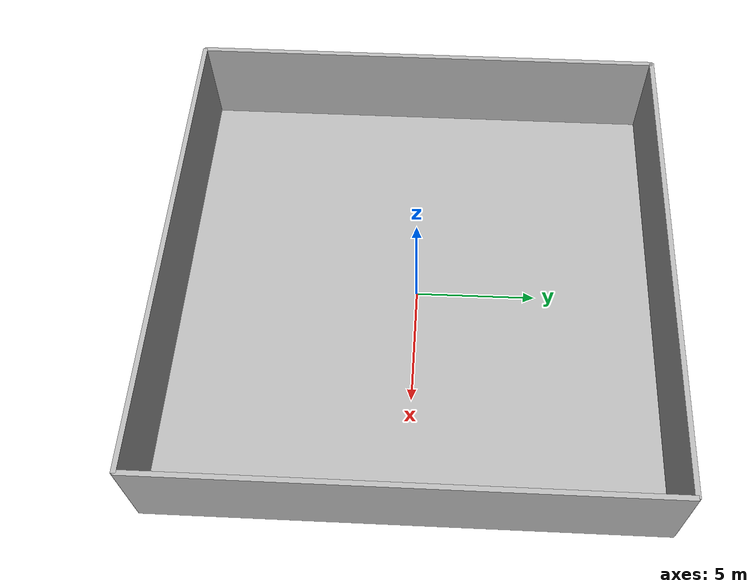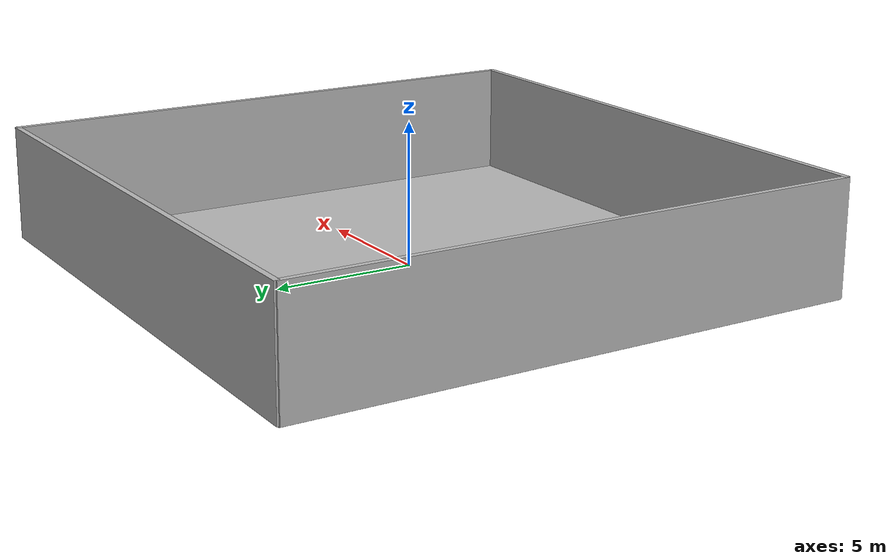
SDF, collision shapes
<?xml version="1.0" ?>
<sdf version="1.9">
  <model name="agentic_ai_demo">
    <static>true</static>

    <link name="link">
      <visual name="visual">
        <pose>0 0 0 1.5708 0 0</pose>
        <geometry>
          <mesh>
            <uri>meshes/agentic_ai_demo.glb</uri>
            <scale>1 1 1</scale>
          </mesh>
        </geometry>
      </visual>

      <collision name="floor_collision">
        <pose>0 0 -0.0289 0 0 0</pose>
        <geometry>
          <box>
            <size>20.15 20.15 0.06</size>
          </box>
        </geometry>
      </collision>

      <collision name="wall_north_collision">
        <pose>0 10.04 2.0 0 0 0</pose>
        <geometry>
          <box>
            <size>20.15 0.2 4.05</size>
          </box>
        </geometry>
      </collision>

      <collision name="wall_south_collision">
        <pose>0 -10.04 2.0 0 0 0</pose>
        <geometry>
          <box>
            <size>20.15 0.2 4.05</size>
          </box>
        </geometry>
      </collision>

      <collision name="wall_east_collision">
        <pose>10.04 0 2.0 0 0 0</pose>
        <geometry>
          <box>
            <size>0.2 20.15 4.05</size>
          </box>
        </geometry>
      </collision>

      <collision name="wall_west_collision">
        <pose>-10.04 0 2.0 0 0 0</pose>
        <geometry>
          <box>
            <size>0.2 20.15 4.05</size>
          </box>
        </geometry>
      </collision>
    </link>
  </model>
</sdf>
